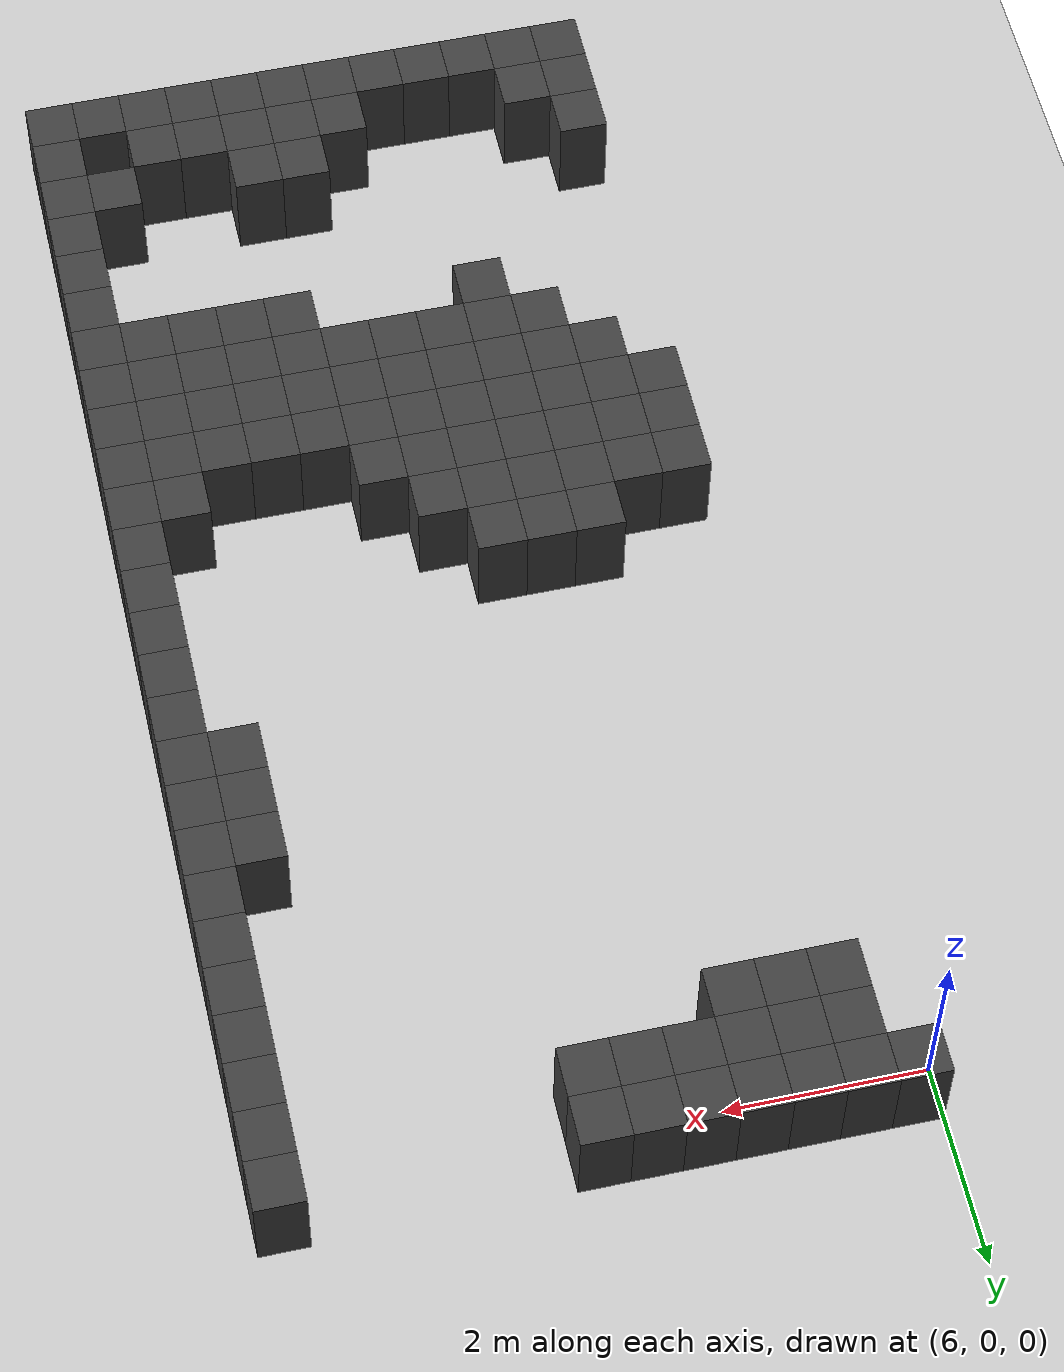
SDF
<sdf version="1.7">
 <world name="map_7372">
  <model name="ground_plane">
   <static>true</static>
   <link name="link">
    <collision name="collision">
     <geometry><plane><normal>0 0 1</normal><size>200 200</size></plane></geometry>
    </collision>
    <visual name="visual">
     <geometry><plane><normal>0 0 1</normal><size>200 200</size></plane></geometry>
     <material><ambient>0.8 0.8 0.8 1</ambient><diffuse>0.8 0.8 0.8 1</diffuse></material>
    </visual>
   </link>
  </model>
  <model name="maze_environment">
   <static>true</static>
   <link name="wall_411">
    <pose>6.250 0.250 0.500 0 0 0</pose>
    <collision name="col"><geometry><box><size>0.5 0.5 1.0</size></box></geometry></collision>
    <visual name="vis">
     <geometry><box><size>0.5 0.5 1.0</size></box></geometry>
     <material><ambient>0.15 0.15 0.15 1</ambient><diffuse>0.25 0.25 0.25 1</diffuse></material>
    </visual>
   </link>
   <link name="wall_412">
    <pose>6.750 0.250 0.500 0 0 0</pose>
    <collision name="col"><geometry><box><size>0.5 0.5 1.0</size></box></geometry></collision>
    <visual name="vis">
     <geometry><box><size>0.5 0.5 1.0</size></box></geometry>
     <material><ambient>0.15 0.15 0.15 1</ambient><diffuse>0.25 0.25 0.25 1</diffuse></material>
    </visual>
   </link>
   <link name="wall_413">
    <pose>7.250 0.250 0.500 0 0 0</pose>
    <collision name="col"><geometry><box><size>0.5 0.5 1.0</size></box></geometry></collision>
    <visual name="vis">
     <geometry><box><size>0.5 0.5 1.0</size></box></geometry>
     <material><ambient>0.15 0.15 0.15 1</ambient><diffuse>0.25 0.25 0.25 1</diffuse></material>
    </visual>
   </link>
   <link name="wall_414">
    <pose>7.750 0.250 0.500 0 0 0</pose>
    <collision name="col"><geometry><box><size>0.5 0.5 1.0</size></box></geometry></collision>
    <visual name="vis">
     <geometry><box><size>0.5 0.5 1.0</size></box></geometry>
     <material><ambient>0.15 0.15 0.15 1</ambient><diffuse>0.25 0.25 0.25 1</diffuse></material>
    </visual>
   </link>
   <link name="wall_415">
    <pose>8.250 0.250 0.500 0 0 0</pose>
    <collision name="col"><geometry><box><size>0.5 0.5 1.0</size></box></geometry></collision>
    <visual name="vis">
     <geometry><box><size>0.5 0.5 1.0</size></box></geometry>
     <material><ambient>0.15 0.15 0.15 1</ambient><diffuse>0.25 0.25 0.25 1</diffuse></material>
    </visual>
   </link>
   <link name="wall_416">
    <pose>8.750 0.250 0.500 0 0 0</pose>
    <collision name="col"><geometry><box><size>0.5 0.5 1.0</size></box></geometry></collision>
    <visual name="vis">
     <geometry><box><size>0.5 0.5 1.0</size></box></geometry>
     <material><ambient>0.15 0.15 0.15 1</ambient><diffuse>0.25 0.25 0.25 1</diffuse></material>
    </visual>
   </link>
   <link name="wall_417">
    <pose>9.250 0.250 0.500 0 0 0</pose>
    <collision name="col"><geometry><box><size>0.5 0.5 1.0</size></box></geometry></collision>
    <visual name="vis">
     <geometry><box><size>0.5 0.5 1.0</size></box></geometry>
     <material><ambient>0.15 0.15 0.15 1</ambient><diffuse>0.25 0.25 0.25 1</diffuse></material>
    </visual>
   </link>
   <link name="wall_418">
    <pose>12.250 0.250 0.500 0 0 0</pose>
    <collision name="col"><geometry><box><size>0.5 0.5 1.0</size></box></geometry></collision>
    <visual name="vis">
     <geometry><box><size>0.5 0.5 1.0</size></box></geometry>
     <material><ambient>0.15 0.15 0.15 1</ambient><diffuse>0.25 0.25 0.25 1</diffuse></material>
    </visual>
   </link>
   <link name="wall_424">
    <pose>6.750 -0.250 0.500 0 0 0</pose>
    <collision name="col"><geometry><box><size>0.5 0.5 1.0</size></box></geometry></collision>
    <visual name="vis">
     <geometry><box><size>0.5 0.5 1.0</size></box></geometry>
     <material><ambient>0.15 0.15 0.15 1</ambient><diffuse>0.25 0.25 0.25 1</diffuse></material>
    </visual>
   </link>
   <link name="wall_425">
    <pose>7.250 -0.250 0.500 0 0 0</pose>
    <collision name="col"><geometry><box><size>0.5 0.5 1.0</size></box></geometry></collision>
    <visual name="vis">
     <geometry><box><size>0.5 0.5 1.0</size></box></geometry>
     <material><ambient>0.15 0.15 0.15 1</ambient><diffuse>0.25 0.25 0.25 1</diffuse></material>
    </visual>
   </link>
   <link name="wall_426">
    <pose>7.750 -0.250 0.500 0 0 0</pose>
    <collision name="col"><geometry><box><size>0.5 0.5 1.0</size></box></geometry></collision>
    <visual name="vis">
     <geometry><box><size>0.5 0.5 1.0</size></box></geometry>
     <material><ambient>0.15 0.15 0.15 1</ambient><diffuse>0.25 0.25 0.25 1</diffuse></material>
    </visual>
   </link>
   <link name="wall_427">
    <pose>8.250 -0.250 0.500 0 0 0</pose>
    <collision name="col"><geometry><box><size>0.5 0.5 1.0</size></box></geometry></collision>
    <visual name="vis">
     <geometry><box><size>0.5 0.5 1.0</size></box></geometry>
     <material><ambient>0.15 0.15 0.15 1</ambient><diffuse>0.25 0.25 0.25 1</diffuse></material>
    </visual>
   </link>
   <link name="wall_428">
    <pose>8.750 -0.250 0.500 0 0 0</pose>
    <collision name="col"><geometry><box><size>0.5 0.5 1.0</size></box></geometry></collision>
    <visual name="vis">
     <geometry><box><size>0.5 0.5 1.0</size></box></geometry>
     <material><ambient>0.15 0.15 0.15 1</ambient><diffuse>0.25 0.25 0.25 1</diffuse></material>
    </visual>
   </link>
   <link name="wall_429">
    <pose>9.250 -0.250 0.500 0 0 0</pose>
    <collision name="col"><geometry><box><size>0.5 0.5 1.0</size></box></geometry></collision>
    <visual name="vis">
     <geometry><box><size>0.5 0.5 1.0</size></box></geometry>
     <material><ambient>0.15 0.15 0.15 1</ambient><diffuse>0.25 0.25 0.25 1</diffuse></material>
    </visual>
   </link>
   <link name="wall_430">
    <pose>12.250 -0.250 0.500 0 0 0</pose>
    <collision name="col"><geometry><box><size>0.5 0.5 1.0</size></box></geometry></collision>
    <visual name="vis">
     <geometry><box><size>0.5 0.5 1.0</size></box></geometry>
     <material><ambient>0.15 0.15 0.15 1</ambient><diffuse>0.25 0.25 0.25 1</diffuse></material>
    </visual>
   </link>
   <link name="wall_433">
    <pose>6.750 -0.750 0.500 0 0 0</pose>
    <collision name="col"><geometry><box><size>0.5 0.5 1.0</size></box></geometry></collision>
    <visual name="vis">
     <geometry><box><size>0.5 0.5 1.0</size></box></geometry>
     <material><ambient>0.15 0.15 0.15 1</ambient><diffuse>0.25 0.25 0.25 1</diffuse></material>
    </visual>
   </link>
   <link name="wall_434">
    <pose>7.250 -0.750 0.500 0 0 0</pose>
    <collision name="col"><geometry><box><size>0.5 0.5 1.0</size></box></geometry></collision>
    <visual name="vis">
     <geometry><box><size>0.5 0.5 1.0</size></box></geometry>
     <material><ambient>0.15 0.15 0.15 1</ambient><diffuse>0.25 0.25 0.25 1</diffuse></material>
    </visual>
   </link>
   <link name="wall_435">
    <pose>7.750 -0.750 0.500 0 0 0</pose>
    <collision name="col"><geometry><box><size>0.5 0.5 1.0</size></box></geometry></collision>
    <visual name="vis">
     <geometry><box><size>0.5 0.5 1.0</size></box></geometry>
     <material><ambient>0.15 0.15 0.15 1</ambient><diffuse>0.25 0.25 0.25 1</diffuse></material>
    </visual>
   </link>
   <link name="wall_436">
    <pose>12.250 -0.750 0.500 0 0 0</pose>
    <collision name="col"><geometry><box><size>0.5 0.5 1.0</size></box></geometry></collision>
    <visual name="vis">
     <geometry><box><size>0.5 0.5 1.0</size></box></geometry>
     <material><ambient>0.15 0.15 0.15 1</ambient><diffuse>0.25 0.25 0.25 1</diffuse></material>
    </visual>
   </link>
   <link name="wall_438">
    <pose>12.250 -1.250 0.500 0 0 0</pose>
    <collision name="col"><geometry><box><size>0.5 0.5 1.0</size></box></geometry></collision>
    <visual name="vis">
     <geometry><box><size>0.5 0.5 1.0</size></box></geometry>
     <material><ambient>0.15 0.15 0.15 1</ambient><diffuse>0.25 0.25 0.25 1</diffuse></material>
    </visual>
   </link>
   <link name="wall_440">
    <pose>12.250 -1.750 0.500 0 0 0</pose>
    <collision name="col"><geometry><box><size>0.5 0.5 1.0</size></box></geometry></collision>
    <visual name="vis">
     <geometry><box><size>0.5 0.5 1.0</size></box></geometry>
     <material><ambient>0.15 0.15 0.15 1</ambient><diffuse>0.25 0.25 0.25 1</diffuse></material>
    </visual>
   </link>
   <link name="wall_449">
    <pose>12.250 -2.250 0.500 0 0 0</pose>
    <collision name="col"><geometry><box><size>0.5 0.5 1.0</size></box></geometry></collision>
    <visual name="vis">
     <geometry><box><size>0.5 0.5 1.0</size></box></geometry>
     <material><ambient>0.15 0.15 0.15 1</ambient><diffuse>0.25 0.25 0.25 1</diffuse></material>
    </visual>
   </link>
   <link name="wall_465">
    <pose>12.250 -2.750 0.500 0 0 0</pose>
    <collision name="col"><geometry><box><size>0.5 0.5 1.0</size></box></geometry></collision>
    <visual name="vis">
     <geometry><box><size>0.5 0.5 1.0</size></box></geometry>
     <material><ambient>0.15 0.15 0.15 1</ambient><diffuse>0.25 0.25 0.25 1</diffuse></material>
    </visual>
   </link>
   <link name="wall_489">
    <pose>11.750 -3.250 0.500 0 0 0</pose>
    <collision name="col"><geometry><box><size>0.5 0.5 1.0</size></box></geometry></collision>
    <visual name="vis">
     <geometry><box><size>0.5 0.5 1.0</size></box></geometry>
     <material><ambient>0.15 0.15 0.15 1</ambient><diffuse>0.25 0.25 0.25 1</diffuse></material>
    </visual>
   </link>
   <link name="wall_490">
    <pose>12.250 -3.250 0.500 0 0 0</pose>
    <collision name="col"><geometry><box><size>0.5 0.5 1.0</size></box></geometry></collision>
    <visual name="vis">
     <geometry><box><size>0.5 0.5 1.0</size></box></geometry>
     <material><ambient>0.15 0.15 0.15 1</ambient><diffuse>0.25 0.25 0.25 1</diffuse></material>
    </visual>
   </link>
   <link name="wall_515">
    <pose>11.750 -3.750 0.500 0 0 0</pose>
    <collision name="col"><geometry><box><size>0.5 0.5 1.0</size></box></geometry></collision>
    <visual name="vis">
     <geometry><box><size>0.5 0.5 1.0</size></box></geometry>
     <material><ambient>0.15 0.15 0.15 1</ambient><diffuse>0.25 0.25 0.25 1</diffuse></material>
    </visual>
   </link>
   <link name="wall_516">
    <pose>12.250 -3.750 0.500 0 0 0</pose>
    <collision name="col"><geometry><box><size>0.5 0.5 1.0</size></box></geometry></collision>
    <visual name="vis">
     <geometry><box><size>0.5 0.5 1.0</size></box></geometry>
     <material><ambient>0.15 0.15 0.15 1</ambient><diffuse>0.25 0.25 0.25 1</diffuse></material>
    </visual>
   </link>
   <link name="wall_539">
    <pose>11.750 -4.250 0.500 0 0 0</pose>
    <collision name="col"><geometry><box><size>0.5 0.5 1.0</size></box></geometry></collision>
    <visual name="vis">
     <geometry><box><size>0.5 0.5 1.0</size></box></geometry>
     <material><ambient>0.15 0.15 0.15 1</ambient><diffuse>0.25 0.25 0.25 1</diffuse></material>
    </visual>
   </link>
   <link name="wall_540">
    <pose>12.250 -4.250 0.500 0 0 0</pose>
    <collision name="col"><geometry><box><size>0.5 0.5 1.0</size></box></geometry></collision>
    <visual name="vis">
     <geometry><box><size>0.5 0.5 1.0</size></box></geometry>
     <material><ambient>0.15 0.15 0.15 1</ambient><diffuse>0.25 0.25 0.25 1</diffuse></material>
    </visual>
   </link>
   <link name="wall_557">
    <pose>12.250 -4.750 0.500 0 0 0</pose>
    <collision name="col"><geometry><box><size>0.5 0.5 1.0</size></box></geometry></collision>
    <visual name="vis">
     <geometry><box><size>0.5 0.5 1.0</size></box></geometry>
     <material><ambient>0.15 0.15 0.15 1</ambient><diffuse>0.25 0.25 0.25 1</diffuse></material>
    </visual>
   </link>
   <link name="wall_569">
    <pose>12.250 -5.250 0.500 0 0 0</pose>
    <collision name="col"><geometry><box><size>0.5 0.5 1.0</size></box></geometry></collision>
    <visual name="vis">
     <geometry><box><size>0.5 0.5 1.0</size></box></geometry>
     <material><ambient>0.15 0.15 0.15 1</ambient><diffuse>0.25 0.25 0.25 1</diffuse></material>
    </visual>
   </link>
   <link name="wall_578">
    <pose>12.250 -5.750 0.500 0 0 0</pose>
    <collision name="col"><geometry><box><size>0.5 0.5 1.0</size></box></geometry></collision>
    <visual name="vis">
     <geometry><box><size>0.5 0.5 1.0</size></box></geometry>
     <material><ambient>0.15 0.15 0.15 1</ambient><diffuse>0.25 0.25 0.25 1</diffuse></material>
    </visual>
   </link>
   <link name="wall_583">
    <pose>7.750 -6.250 0.500 0 0 0</pose>
    <collision name="col"><geometry><box><size>0.5 0.5 1.0</size></box></geometry></collision>
    <visual name="vis">
     <geometry><box><size>0.5 0.5 1.0</size></box></geometry>
     <material><ambient>0.15 0.15 0.15 1</ambient><diffuse>0.25 0.25 0.25 1</diffuse></material>
    </visual>
   </link>
   <link name="wall_584">
    <pose>8.250 -6.250 0.500 0 0 0</pose>
    <collision name="col"><geometry><box><size>0.5 0.5 1.0</size></box></geometry></collision>
    <visual name="vis">
     <geometry><box><size>0.5 0.5 1.0</size></box></geometry>
     <material><ambient>0.15 0.15 0.15 1</ambient><diffuse>0.25 0.25 0.25 1</diffuse></material>
    </visual>
   </link>
   <link name="wall_585">
    <pose>8.750 -6.250 0.500 0 0 0</pose>
    <collision name="col"><geometry><box><size>0.5 0.5 1.0</size></box></geometry></collision>
    <visual name="vis">
     <geometry><box><size>0.5 0.5 1.0</size></box></geometry>
     <material><ambient>0.15 0.15 0.15 1</ambient><diffuse>0.25 0.25 0.25 1</diffuse></material>
    </visual>
   </link>
   <link name="wall_586">
    <pose>12.250 -6.250 0.500 0 0 0</pose>
    <collision name="col"><geometry><box><size>0.5 0.5 1.0</size></box></geometry></collision>
    <visual name="vis">
     <geometry><box><size>0.5 0.5 1.0</size></box></geometry>
     <material><ambient>0.15 0.15 0.15 1</ambient><diffuse>0.25 0.25 0.25 1</diffuse></material>
    </visual>
   </link>
   <link name="wall_596">
    <pose>6.750 -6.750 0.500 0 0 0</pose>
    <collision name="col"><geometry><box><size>0.5 0.5 1.0</size></box></geometry></collision>
    <visual name="vis">
     <geometry><box><size>0.5 0.5 1.0</size></box></geometry>
     <material><ambient>0.15 0.15 0.15 1</ambient><diffuse>0.25 0.25 0.25 1</diffuse></material>
    </visual>
   </link>
   <link name="wall_597">
    <pose>7.250 -6.750 0.500 0 0 0</pose>
    <collision name="col"><geometry><box><size>0.5 0.5 1.0</size></box></geometry></collision>
    <visual name="vis">
     <geometry><box><size>0.5 0.5 1.0</size></box></geometry>
     <material><ambient>0.15 0.15 0.15 1</ambient><diffuse>0.25 0.25 0.25 1</diffuse></material>
    </visual>
   </link>
   <link name="wall_598">
    <pose>7.750 -6.750 0.500 0 0 0</pose>
    <collision name="col"><geometry><box><size>0.5 0.5 1.0</size></box></geometry></collision>
    <visual name="vis">
     <geometry><box><size>0.5 0.5 1.0</size></box></geometry>
     <material><ambient>0.15 0.15 0.15 1</ambient><diffuse>0.25 0.25 0.25 1</diffuse></material>
    </visual>
   </link>
   <link name="wall_599">
    <pose>8.250 -6.750 0.500 0 0 0</pose>
    <collision name="col"><geometry><box><size>0.5 0.5 1.0</size></box></geometry></collision>
    <visual name="vis">
     <geometry><box><size>0.5 0.5 1.0</size></box></geometry>
     <material><ambient>0.15 0.15 0.15 1</ambient><diffuse>0.25 0.25 0.25 1</diffuse></material>
    </visual>
   </link>
   <link name="wall_600">
    <pose>8.750 -6.750 0.500 0 0 0</pose>
    <collision name="col"><geometry><box><size>0.5 0.5 1.0</size></box></geometry></collision>
    <visual name="vis">
     <geometry><box><size>0.5 0.5 1.0</size></box></geometry>
     <material><ambient>0.15 0.15 0.15 1</ambient><diffuse>0.25 0.25 0.25 1</diffuse></material>
    </visual>
   </link>
   <link name="wall_601">
    <pose>9.250 -6.750 0.500 0 0 0</pose>
    <collision name="col"><geometry><box><size>0.5 0.5 1.0</size></box></geometry></collision>
    <visual name="vis">
     <geometry><box><size>0.5 0.5 1.0</size></box></geometry>
     <material><ambient>0.15 0.15 0.15 1</ambient><diffuse>0.25 0.25 0.25 1</diffuse></material>
    </visual>
   </link>
   <link name="wall_602">
    <pose>12.250 -6.750 0.500 0 0 0</pose>
    <collision name="col"><geometry><box><size>0.5 0.5 1.0</size></box></geometry></collision>
    <visual name="vis">
     <geometry><box><size>0.5 0.5 1.0</size></box></geometry>
     <material><ambient>0.15 0.15 0.15 1</ambient><diffuse>0.25 0.25 0.25 1</diffuse></material>
    </visual>
   </link>
   <link name="wall_612">
    <pose>6.750 -7.250 0.500 0 0 0</pose>
    <collision name="col"><geometry><box><size>0.5 0.5 1.0</size></box></geometry></collision>
    <visual name="vis">
     <geometry><box><size>0.5 0.5 1.0</size></box></geometry>
     <material><ambient>0.15 0.15 0.15 1</ambient><diffuse>0.25 0.25 0.25 1</diffuse></material>
    </visual>
   </link>
   <link name="wall_613">
    <pose>7.250 -7.250 0.500 0 0 0</pose>
    <collision name="col"><geometry><box><size>0.5 0.5 1.0</size></box></geometry></collision>
    <visual name="vis">
     <geometry><box><size>0.5 0.5 1.0</size></box></geometry>
     <material><ambient>0.15 0.15 0.15 1</ambient><diffuse>0.25 0.25 0.25 1</diffuse></material>
    </visual>
   </link>
   <link name="wall_614">
    <pose>7.750 -7.250 0.500 0 0 0</pose>
    <collision name="col"><geometry><box><size>0.5 0.5 1.0</size></box></geometry></collision>
    <visual name="vis">
     <geometry><box><size>0.5 0.5 1.0</size></box></geometry>
     <material><ambient>0.15 0.15 0.15 1</ambient><diffuse>0.25 0.25 0.25 1</diffuse></material>
    </visual>
   </link>
   <link name="wall_615">
    <pose>8.250 -7.250 0.500 0 0 0</pose>
    <collision name="col"><geometry><box><size>0.5 0.5 1.0</size></box></geometry></collision>
    <visual name="vis">
     <geometry><box><size>0.5 0.5 1.0</size></box></geometry>
     <material><ambient>0.15 0.15 0.15 1</ambient><diffuse>0.25 0.25 0.25 1</diffuse></material>
    </visual>
   </link>
   <link name="wall_616">
    <pose>8.750 -7.250 0.500 0 0 0</pose>
    <collision name="col"><geometry><box><size>0.5 0.5 1.0</size></box></geometry></collision>
    <visual name="vis">
     <geometry><box><size>0.5 0.5 1.0</size></box></geometry>
     <material><ambient>0.15 0.15 0.15 1</ambient><diffuse>0.25 0.25 0.25 1</diffuse></material>
    </visual>
   </link>
   <link name="wall_617">
    <pose>9.250 -7.250 0.500 0 0 0</pose>
    <collision name="col"><geometry><box><size>0.5 0.5 1.0</size></box></geometry></collision>
    <visual name="vis">
     <geometry><box><size>0.5 0.5 1.0</size></box></geometry>
     <material><ambient>0.15 0.15 0.15 1</ambient><diffuse>0.25 0.25 0.25 1</diffuse></material>
    </visual>
   </link>
   <link name="wall_618">
    <pose>9.750 -7.250 0.500 0 0 0</pose>
    <collision name="col"><geometry><box><size>0.5 0.5 1.0</size></box></geometry></collision>
    <visual name="vis">
     <geometry><box><size>0.5 0.5 1.0</size></box></geometry>
     <material><ambient>0.15 0.15 0.15 1</ambient><diffuse>0.25 0.25 0.25 1</diffuse></material>
    </visual>
   </link>
   <link name="wall_619">
    <pose>11.750 -7.250 0.500 0 0 0</pose>
    <collision name="col"><geometry><box><size>0.5 0.5 1.0</size></box></geometry></collision>
    <visual name="vis">
     <geometry><box><size>0.5 0.5 1.0</size></box></geometry>
     <material><ambient>0.15 0.15 0.15 1</ambient><diffuse>0.25 0.25 0.25 1</diffuse></material>
    </visual>
   </link>
   <link name="wall_620">
    <pose>12.250 -7.250 0.500 0 0 0</pose>
    <collision name="col"><geometry><box><size>0.5 0.5 1.0</size></box></geometry></collision>
    <visual name="vis">
     <geometry><box><size>0.5 0.5 1.0</size></box></geometry>
     <material><ambient>0.15 0.15 0.15 1</ambient><diffuse>0.25 0.25 0.25 1</diffuse></material>
    </visual>
   </link>
   <link name="wall_629">
    <pose>6.750 -7.750 0.500 0 0 0</pose>
    <collision name="col"><geometry><box><size>0.5 0.5 1.0</size></box></geometry></collision>
    <visual name="vis">
     <geometry><box><size>0.5 0.5 1.0</size></box></geometry>
     <material><ambient>0.15 0.15 0.15 1</ambient><diffuse>0.25 0.25 0.25 1</diffuse></material>
    </visual>
   </link>
   <link name="wall_630">
    <pose>7.250 -7.750 0.500 0 0 0</pose>
    <collision name="col"><geometry><box><size>0.5 0.5 1.0</size></box></geometry></collision>
    <visual name="vis">
     <geometry><box><size>0.5 0.5 1.0</size></box></geometry>
     <material><ambient>0.15 0.15 0.15 1</ambient><diffuse>0.25 0.25 0.25 1</diffuse></material>
    </visual>
   </link>
   <link name="wall_631">
    <pose>7.750 -7.750 0.500 0 0 0</pose>
    <collision name="col"><geometry><box><size>0.5 0.5 1.0</size></box></geometry></collision>
    <visual name="vis">
     <geometry><box><size>0.5 0.5 1.0</size></box></geometry>
     <material><ambient>0.15 0.15 0.15 1</ambient><diffuse>0.25 0.25 0.25 1</diffuse></material>
    </visual>
   </link>
   <link name="wall_632">
    <pose>8.250 -7.750 0.500 0 0 0</pose>
    <collision name="col"><geometry><box><size>0.5 0.5 1.0</size></box></geometry></collision>
    <visual name="vis">
     <geometry><box><size>0.5 0.5 1.0</size></box></geometry>
     <material><ambient>0.15 0.15 0.15 1</ambient><diffuse>0.25 0.25 0.25 1</diffuse></material>
    </visual>
   </link>
   <link name="wall_633">
    <pose>8.750 -7.750 0.500 0 0 0</pose>
    <collision name="col"><geometry><box><size>0.5 0.5 1.0</size></box></geometry></collision>
    <visual name="vis">
     <geometry><box><size>0.5 0.5 1.0</size></box></geometry>
     <material><ambient>0.15 0.15 0.15 1</ambient><diffuse>0.25 0.25 0.25 1</diffuse></material>
    </visual>
   </link>
   <link name="wall_634">
    <pose>9.250 -7.750 0.500 0 0 0</pose>
    <collision name="col"><geometry><box><size>0.5 0.5 1.0</size></box></geometry></collision>
    <visual name="vis">
     <geometry><box><size>0.5 0.5 1.0</size></box></geometry>
     <material><ambient>0.15 0.15 0.15 1</ambient><diffuse>0.25 0.25 0.25 1</diffuse></material>
    </visual>
   </link>
   <link name="wall_635">
    <pose>9.750 -7.750 0.500 0 0 0</pose>
    <collision name="col"><geometry><box><size>0.5 0.5 1.0</size></box></geometry></collision>
    <visual name="vis">
     <geometry><box><size>0.5 0.5 1.0</size></box></geometry>
     <material><ambient>0.15 0.15 0.15 1</ambient><diffuse>0.25 0.25 0.25 1</diffuse></material>
    </visual>
   </link>
   <link name="wall_636">
    <pose>10.250 -7.750 0.500 0 0 0</pose>
    <collision name="col"><geometry><box><size>0.5 0.5 1.0</size></box></geometry></collision>
    <visual name="vis">
     <geometry><box><size>0.5 0.5 1.0</size></box></geometry>
     <material><ambient>0.15 0.15 0.15 1</ambient><diffuse>0.25 0.25 0.25 1</diffuse></material>
    </visual>
   </link>
   <link name="wall_637">
    <pose>10.750 -7.750 0.500 0 0 0</pose>
    <collision name="col"><geometry><box><size>0.5 0.5 1.0</size></box></geometry></collision>
    <visual name="vis">
     <geometry><box><size>0.5 0.5 1.0</size></box></geometry>
     <material><ambient>0.15 0.15 0.15 1</ambient><diffuse>0.25 0.25 0.25 1</diffuse></material>
    </visual>
   </link>
   <link name="wall_638">
    <pose>11.250 -7.750 0.500 0 0 0</pose>
    <collision name="col"><geometry><box><size>0.5 0.5 1.0</size></box></geometry></collision>
    <visual name="vis">
     <geometry><box><size>0.5 0.5 1.0</size></box></geometry>
     <material><ambient>0.15 0.15 0.15 1</ambient><diffuse>0.25 0.25 0.25 1</diffuse></material>
    </visual>
   </link>
   <link name="wall_639">
    <pose>11.750 -7.750 0.500 0 0 0</pose>
    <collision name="col"><geometry><box><size>0.5 0.5 1.0</size></box></geometry></collision>
    <visual name="vis">
     <geometry><box><size>0.5 0.5 1.0</size></box></geometry>
     <material><ambient>0.15 0.15 0.15 1</ambient><diffuse>0.25 0.25 0.25 1</diffuse></material>
    </visual>
   </link>
   <link name="wall_640">
    <pose>12.250 -7.750 0.500 0 0 0</pose>
    <collision name="col"><geometry><box><size>0.5 0.5 1.0</size></box></geometry></collision>
    <visual name="vis">
     <geometry><box><size>0.5 0.5 1.0</size></box></geometry>
     <material><ambient>0.15 0.15 0.15 1</ambient><diffuse>0.25 0.25 0.25 1</diffuse></material>
    </visual>
   </link>
   <link name="wall_646">
    <pose>7.250 -8.250 0.500 0 0 0</pose>
    <collision name="col"><geometry><box><size>0.5 0.5 1.0</size></box></geometry></collision>
    <visual name="vis">
     <geometry><box><size>0.5 0.5 1.0</size></box></geometry>
     <material><ambient>0.15 0.15 0.15 1</ambient><diffuse>0.25 0.25 0.25 1</diffuse></material>
    </visual>
   </link>
   <link name="wall_647">
    <pose>7.750 -8.250 0.500 0 0 0</pose>
    <collision name="col"><geometry><box><size>0.5 0.5 1.0</size></box></geometry></collision>
    <visual name="vis">
     <geometry><box><size>0.5 0.5 1.0</size></box></geometry>
     <material><ambient>0.15 0.15 0.15 1</ambient><diffuse>0.25 0.25 0.25 1</diffuse></material>
    </visual>
   </link>
   <link name="wall_648">
    <pose>8.250 -8.250 0.500 0 0 0</pose>
    <collision name="col"><geometry><box><size>0.5 0.5 1.0</size></box></geometry></collision>
    <visual name="vis">
     <geometry><box><size>0.5 0.5 1.0</size></box></geometry>
     <material><ambient>0.15 0.15 0.15 1</ambient><diffuse>0.25 0.25 0.25 1</diffuse></material>
    </visual>
   </link>
   <link name="wall_649">
    <pose>8.750 -8.250 0.500 0 0 0</pose>
    <collision name="col"><geometry><box><size>0.5 0.5 1.0</size></box></geometry></collision>
    <visual name="vis">
     <geometry><box><size>0.5 0.5 1.0</size></box></geometry>
     <material><ambient>0.15 0.15 0.15 1</ambient><diffuse>0.25 0.25 0.25 1</diffuse></material>
    </visual>
   </link>
   <link name="wall_650">
    <pose>9.250 -8.250 0.500 0 0 0</pose>
    <collision name="col"><geometry><box><size>0.5 0.5 1.0</size></box></geometry></collision>
    <visual name="vis">
     <geometry><box><size>0.5 0.5 1.0</size></box></geometry>
     <material><ambient>0.15 0.15 0.15 1</ambient><diffuse>0.25 0.25 0.25 1</diffuse></material>
    </visual>
   </link>
   <link name="wall_651">
    <pose>9.750 -8.250 0.500 0 0 0</pose>
    <collision name="col"><geometry><box><size>0.5 0.5 1.0</size></box></geometry></collision>
    <visual name="vis">
     <geometry><box><size>0.5 0.5 1.0</size></box></geometry>
     <material><ambient>0.15 0.15 0.15 1</ambient><diffuse>0.25 0.25 0.25 1</diffuse></material>
    </visual>
   </link>
   <link name="wall_652">
    <pose>10.250 -8.250 0.500 0 0 0</pose>
    <collision name="col"><geometry><box><size>0.5 0.5 1.0</size></box></geometry></collision>
    <visual name="vis">
     <geometry><box><size>0.5 0.5 1.0</size></box></geometry>
     <material><ambient>0.15 0.15 0.15 1</ambient><diffuse>0.25 0.25 0.25 1</diffuse></material>
    </visual>
   </link>
   <link name="wall_653">
    <pose>10.750 -8.250 0.500 0 0 0</pose>
    <collision name="col"><geometry><box><size>0.5 0.5 1.0</size></box></geometry></collision>
    <visual name="vis">
     <geometry><box><size>0.5 0.5 1.0</size></box></geometry>
     <material><ambient>0.15 0.15 0.15 1</ambient><diffuse>0.25 0.25 0.25 1</diffuse></material>
    </visual>
   </link>
   <link name="wall_654">
    <pose>11.250 -8.250 0.500 0 0 0</pose>
    <collision name="col"><geometry><box><size>0.5 0.5 1.0</size></box></geometry></collision>
    <visual name="vis">
     <geometry><box><size>0.5 0.5 1.0</size></box></geometry>
     <material><ambient>0.15 0.15 0.15 1</ambient><diffuse>0.25 0.25 0.25 1</diffuse></material>
    </visual>
   </link>
   <link name="wall_655">
    <pose>11.750 -8.250 0.500 0 0 0</pose>
    <collision name="col"><geometry><box><size>0.5 0.5 1.0</size></box></geometry></collision>
    <visual name="vis">
     <geometry><box><size>0.5 0.5 1.0</size></box></geometry>
     <material><ambient>0.15 0.15 0.15 1</ambient><diffuse>0.25 0.25 0.25 1</diffuse></material>
    </visual>
   </link>
   <link name="wall_656">
    <pose>12.250 -8.250 0.500 0 0 0</pose>
    <collision name="col"><geometry><box><size>0.5 0.5 1.0</size></box></geometry></collision>
    <visual name="vis">
     <geometry><box><size>0.5 0.5 1.0</size></box></geometry>
     <material><ambient>0.15 0.15 0.15 1</ambient><diffuse>0.25 0.25 0.25 1</diffuse></material>
    </visual>
   </link>
   <link name="wall_663">
    <pose>7.750 -8.750 0.500 0 0 0</pose>
    <collision name="col"><geometry><box><size>0.5 0.5 1.0</size></box></geometry></collision>
    <visual name="vis">
     <geometry><box><size>0.5 0.5 1.0</size></box></geometry>
     <material><ambient>0.15 0.15 0.15 1</ambient><diffuse>0.25 0.25 0.25 1</diffuse></material>
    </visual>
   </link>
   <link name="wall_664">
    <pose>8.250 -8.750 0.500 0 0 0</pose>
    <collision name="col"><geometry><box><size>0.5 0.5 1.0</size></box></geometry></collision>
    <visual name="vis">
     <geometry><box><size>0.5 0.5 1.0</size></box></geometry>
     <material><ambient>0.15 0.15 0.15 1</ambient><diffuse>0.25 0.25 0.25 1</diffuse></material>
    </visual>
   </link>
   <link name="wall_665">
    <pose>8.750 -8.750 0.500 0 0 0</pose>
    <collision name="col"><geometry><box><size>0.5 0.5 1.0</size></box></geometry></collision>
    <visual name="vis">
     <geometry><box><size>0.5 0.5 1.0</size></box></geometry>
     <material><ambient>0.15 0.15 0.15 1</ambient><diffuse>0.25 0.25 0.25 1</diffuse></material>
    </visual>
   </link>
   <link name="wall_666">
    <pose>9.250 -8.750 0.500 0 0 0</pose>
    <collision name="col"><geometry><box><size>0.5 0.5 1.0</size></box></geometry></collision>
    <visual name="vis">
     <geometry><box><size>0.5 0.5 1.0</size></box></geometry>
     <material><ambient>0.15 0.15 0.15 1</ambient><diffuse>0.25 0.25 0.25 1</diffuse></material>
    </visual>
   </link>
   <link name="wall_667">
    <pose>9.750 -8.750 0.500 0 0 0</pose>
    <collision name="col"><geometry><box><size>0.5 0.5 1.0</size></box></geometry></collision>
    <visual name="vis">
     <geometry><box><size>0.5 0.5 1.0</size></box></geometry>
     <material><ambient>0.15 0.15 0.15 1</ambient><diffuse>0.25 0.25 0.25 1</diffuse></material>
    </visual>
   </link>
   <link name="wall_668">
    <pose>10.250 -8.750 0.500 0 0 0</pose>
    <collision name="col"><geometry><box><size>0.5 0.5 1.0</size></box></geometry></collision>
    <visual name="vis">
     <geometry><box><size>0.5 0.5 1.0</size></box></geometry>
     <material><ambient>0.15 0.15 0.15 1</ambient><diffuse>0.25 0.25 0.25 1</diffuse></material>
    </visual>
   </link>
   <link name="wall_669">
    <pose>10.750 -8.750 0.500 0 0 0</pose>
    <collision name="col"><geometry><box><size>0.5 0.5 1.0</size></box></geometry></collision>
    <visual name="vis">
     <geometry><box><size>0.5 0.5 1.0</size></box></geometry>
     <material><ambient>0.15 0.15 0.15 1</ambient><diffuse>0.25 0.25 0.25 1</diffuse></material>
    </visual>
   </link>
   <link name="wall_670">
    <pose>11.250 -8.750 0.500 0 0 0</pose>
    <collision name="col"><geometry><box><size>0.5 0.5 1.0</size></box></geometry></collision>
    <visual name="vis">
     <geometry><box><size>0.5 0.5 1.0</size></box></geometry>
     <material><ambient>0.15 0.15 0.15 1</ambient><diffuse>0.25 0.25 0.25 1</diffuse></material>
    </visual>
   </link>
   <link name="wall_671">
    <pose>11.750 -8.750 0.500 0 0 0</pose>
    <collision name="col"><geometry><box><size>0.5 0.5 1.0</size></box></geometry></collision>
    <visual name="vis">
     <geometry><box><size>0.5 0.5 1.0</size></box></geometry>
     <material><ambient>0.15 0.15 0.15 1</ambient><diffuse>0.25 0.25 0.25 1</diffuse></material>
    </visual>
   </link>
   <link name="wall_672">
    <pose>12.250 -8.750 0.500 0 0 0</pose>
    <collision name="col"><geometry><box><size>0.5 0.5 1.0</size></box></geometry></collision>
    <visual name="vis">
     <geometry><box><size>0.5 0.5 1.0</size></box></geometry>
     <material><ambient>0.15 0.15 0.15 1</ambient><diffuse>0.25 0.25 0.25 1</diffuse></material>
    </visual>
   </link>
   <link name="wall_686">
    <pose>8.250 -9.250 0.500 0 0 0</pose>
    <collision name="col"><geometry><box><size>0.5 0.5 1.0</size></box></geometry></collision>
    <visual name="vis">
     <geometry><box><size>0.5 0.5 1.0</size></box></geometry>
     <material><ambient>0.15 0.15 0.15 1</ambient><diffuse>0.25 0.25 0.25 1</diffuse></material>
    </visual>
   </link>
   <link name="wall_687">
    <pose>10.250 -9.250 0.500 0 0 0</pose>
    <collision name="col"><geometry><box><size>0.5 0.5 1.0</size></box></geometry></collision>
    <visual name="vis">
     <geometry><box><size>0.5 0.5 1.0</size></box></geometry>
     <material><ambient>0.15 0.15 0.15 1</ambient><diffuse>0.25 0.25 0.25 1</diffuse></material>
    </visual>
   </link>
   <link name="wall_688">
    <pose>10.750 -9.250 0.500 0 0 0</pose>
    <collision name="col"><geometry><box><size>0.5 0.5 1.0</size></box></geometry></collision>
    <visual name="vis">
     <geometry><box><size>0.5 0.5 1.0</size></box></geometry>
     <material><ambient>0.15 0.15 0.15 1</ambient><diffuse>0.25 0.25 0.25 1</diffuse></material>
    </visual>
   </link>
   <link name="wall_689">
    <pose>11.250 -9.250 0.500 0 0 0</pose>
    <collision name="col"><geometry><box><size>0.5 0.5 1.0</size></box></geometry></collision>
    <visual name="vis">
     <geometry><box><size>0.5 0.5 1.0</size></box></geometry>
     <material><ambient>0.15 0.15 0.15 1</ambient><diffuse>0.25 0.25 0.25 1</diffuse></material>
    </visual>
   </link>
   <link name="wall_690">
    <pose>11.750 -9.250 0.500 0 0 0</pose>
    <collision name="col"><geometry><box><size>0.5 0.5 1.0</size></box></geometry></collision>
    <visual name="vis">
     <geometry><box><size>0.5 0.5 1.0</size></box></geometry>
     <material><ambient>0.15 0.15 0.15 1</ambient><diffuse>0.25 0.25 0.25 1</diffuse></material>
    </visual>
   </link>
   <link name="wall_691">
    <pose>12.250 -9.250 0.500 0 0 0</pose>
    <collision name="col"><geometry><box><size>0.5 0.5 1.0</size></box></geometry></collision>
    <visual name="vis">
     <geometry><box><size>0.5 0.5 1.0</size></box></geometry>
     <material><ambient>0.15 0.15 0.15 1</ambient><diffuse>0.25 0.25 0.25 1</diffuse></material>
    </visual>
   </link>
   <link name="wall_707">
    <pose>12.250 -9.750 0.500 0 0 0</pose>
    <collision name="col"><geometry><box><size>0.5 0.5 1.0</size></box></geometry></collision>
    <visual name="vis">
     <geometry><box><size>0.5 0.5 1.0</size></box></geometry>
     <material><ambient>0.15 0.15 0.15 1</ambient><diffuse>0.25 0.25 0.25 1</diffuse></material>
    </visual>
   </link>
   <link name="wall_725">
    <pose>12.250 -10.250 0.500 0 0 0</pose>
    <collision name="col"><geometry><box><size>0.5 0.5 1.0</size></box></geometry></collision>
    <visual name="vis">
     <geometry><box><size>0.5 0.5 1.0</size></box></geometry>
     <material><ambient>0.15 0.15 0.15 1</ambient><diffuse>0.25 0.25 0.25 1</diffuse></material>
    </visual>
   </link>
   <link name="wall_744">
    <pose>12.250 -10.750 0.500 0 0 0</pose>
    <collision name="col"><geometry><box><size>0.5 0.5 1.0</size></box></geometry></collision>
    <visual name="vis">
     <geometry><box><size>0.5 0.5 1.0</size></box></geometry>
     <material><ambient>0.15 0.15 0.15 1</ambient><diffuse>0.25 0.25 0.25 1</diffuse></material>
    </visual>
   </link>
   <link name="wall_760">
    <pose>6.750 -11.250 0.500 0 0 0</pose>
    <collision name="col"><geometry><box><size>0.5 0.5 1.0</size></box></geometry></collision>
    <visual name="vis">
     <geometry><box><size>0.5 0.5 1.0</size></box></geometry>
     <material><ambient>0.15 0.15 0.15 1</ambient><diffuse>0.25 0.25 0.25 1</diffuse></material>
    </visual>
   </link>
   <link name="wall_761">
    <pose>9.750 -11.250 0.500 0 0 0</pose>
    <collision name="col"><geometry><box><size>0.5 0.5 1.0</size></box></geometry></collision>
    <visual name="vis">
     <geometry><box><size>0.5 0.5 1.0</size></box></geometry>
     <material><ambient>0.15 0.15 0.15 1</ambient><diffuse>0.25 0.25 0.25 1</diffuse></material>
    </visual>
   </link>
   <link name="wall_762">
    <pose>10.250 -11.250 0.500 0 0 0</pose>
    <collision name="col"><geometry><box><size>0.5 0.5 1.0</size></box></geometry></collision>
    <visual name="vis">
     <geometry><box><size>0.5 0.5 1.0</size></box></geometry>
     <material><ambient>0.15 0.15 0.15 1</ambient><diffuse>0.25 0.25 0.25 1</diffuse></material>
    </visual>
   </link>
   <link name="wall_763">
    <pose>11.750 -11.250 0.500 0 0 0</pose>
    <collision name="col"><geometry><box><size>0.5 0.5 1.0</size></box></geometry></collision>
    <visual name="vis">
     <geometry><box><size>0.5 0.5 1.0</size></box></geometry>
     <material><ambient>0.15 0.15 0.15 1</ambient><diffuse>0.25 0.25 0.25 1</diffuse></material>
    </visual>
   </link>
   <link name="wall_764">
    <pose>12.250 -11.250 0.500 0 0 0</pose>
    <collision name="col"><geometry><box><size>0.5 0.5 1.0</size></box></geometry></collision>
    <visual name="vis">
     <geometry><box><size>0.5 0.5 1.0</size></box></geometry>
     <material><ambient>0.15 0.15 0.15 1</ambient><diffuse>0.25 0.25 0.25 1</diffuse></material>
    </visual>
   </link>
   <link name="wall_781">
    <pose>6.750 -11.750 0.500 0 0 0</pose>
    <collision name="col"><geometry><box><size>0.5 0.5 1.0</size></box></geometry></collision>
    <visual name="vis">
     <geometry><box><size>0.5 0.5 1.0</size></box></geometry>
     <material><ambient>0.15 0.15 0.15 1</ambient><diffuse>0.25 0.25 0.25 1</diffuse></material>
    </visual>
   </link>
   <link name="wall_782">
    <pose>7.250 -11.750 0.500 0 0 0</pose>
    <collision name="col"><geometry><box><size>0.5 0.5 1.0</size></box></geometry></collision>
    <visual name="vis">
     <geometry><box><size>0.5 0.5 1.0</size></box></geometry>
     <material><ambient>0.15 0.15 0.15 1</ambient><diffuse>0.25 0.25 0.25 1</diffuse></material>
    </visual>
   </link>
   <link name="wall_783">
    <pose>9.250 -11.750 0.500 0 0 0</pose>
    <collision name="col"><geometry><box><size>0.5 0.5 1.0</size></box></geometry></collision>
    <visual name="vis">
     <geometry><box><size>0.5 0.5 1.0</size></box></geometry>
     <material><ambient>0.15 0.15 0.15 1</ambient><diffuse>0.25 0.25 0.25 1</diffuse></material>
    </visual>
   </link>
   <link name="wall_784">
    <pose>9.750 -11.750 0.500 0 0 0</pose>
    <collision name="col"><geometry><box><size>0.5 0.5 1.0</size></box></geometry></collision>
    <visual name="vis">
     <geometry><box><size>0.5 0.5 1.0</size></box></geometry>
     <material><ambient>0.15 0.15 0.15 1</ambient><diffuse>0.25 0.25 0.25 1</diffuse></material>
    </visual>
   </link>
   <link name="wall_785">
    <pose>10.250 -11.750 0.500 0 0 0</pose>
    <collision name="col"><geometry><box><size>0.5 0.5 1.0</size></box></geometry></collision>
    <visual name="vis">
     <geometry><box><size>0.5 0.5 1.0</size></box></geometry>
     <material><ambient>0.15 0.15 0.15 1</ambient><diffuse>0.25 0.25 0.25 1</diffuse></material>
    </visual>
   </link>
   <link name="wall_786">
    <pose>10.750 -11.750 0.500 0 0 0</pose>
    <collision name="col"><geometry><box><size>0.5 0.5 1.0</size></box></geometry></collision>
    <visual name="vis">
     <geometry><box><size>0.5 0.5 1.0</size></box></geometry>
     <material><ambient>0.15 0.15 0.15 1</ambient><diffuse>0.25 0.25 0.25 1</diffuse></material>
    </visual>
   </link>
   <link name="wall_787">
    <pose>11.250 -11.750 0.500 0 0 0</pose>
    <collision name="col"><geometry><box><size>0.5 0.5 1.0</size></box></geometry></collision>
    <visual name="vis">
     <geometry><box><size>0.5 0.5 1.0</size></box></geometry>
     <material><ambient>0.15 0.15 0.15 1</ambient><diffuse>0.25 0.25 0.25 1</diffuse></material>
    </visual>
   </link>
   <link name="wall_788">
    <pose>12.250 -11.750 0.500 0 0 0</pose>
    <collision name="col"><geometry><box><size>0.5 0.5 1.0</size></box></geometry></collision>
    <visual name="vis">
     <geometry><box><size>0.5 0.5 1.0</size></box></geometry>
     <material><ambient>0.15 0.15 0.15 1</ambient><diffuse>0.25 0.25 0.25 1</diffuse></material>
    </visual>
   </link>
   <link name="wall_827">
    <pose>6.750 -12.250 0.500 0 0 0</pose>
    <collision name="col"><geometry><box><size>0.5 0.5 1.0</size></box></geometry></collision>
    <visual name="vis">
     <geometry><box><size>0.5 0.5 1.0</size></box></geometry>
     <material><ambient>0.15 0.15 0.15 1</ambient><diffuse>0.25 0.25 0.25 1</diffuse></material>
    </visual>
   </link>
   <link name="wall_828">
    <pose>7.250 -12.250 0.500 0 0 0</pose>
    <collision name="col"><geometry><box><size>0.5 0.5 1.0</size></box></geometry></collision>
    <visual name="vis">
     <geometry><box><size>0.5 0.5 1.0</size></box></geometry>
     <material><ambient>0.15 0.15 0.15 1</ambient><diffuse>0.25 0.25 0.25 1</diffuse></material>
    </visual>
   </link>
   <link name="wall_829">
    <pose>7.750 -12.250 0.500 0 0 0</pose>
    <collision name="col"><geometry><box><size>0.5 0.5 1.0</size></box></geometry></collision>
    <visual name="vis">
     <geometry><box><size>0.5 0.5 1.0</size></box></geometry>
     <material><ambient>0.15 0.15 0.15 1</ambient><diffuse>0.25 0.25 0.25 1</diffuse></material>
    </visual>
   </link>
   <link name="wall_830">
    <pose>8.250 -12.250 0.500 0 0 0</pose>
    <collision name="col"><geometry><box><size>0.5 0.5 1.0</size></box></geometry></collision>
    <visual name="vis">
     <geometry><box><size>0.5 0.5 1.0</size></box></geometry>
     <material><ambient>0.15 0.15 0.15 1</ambient><diffuse>0.25 0.25 0.25 1</diffuse></material>
    </visual>
   </link>
   <link name="wall_831">
    <pose>8.750 -12.250 0.500 0 0 0</pose>
    <collision name="col"><geometry><box><size>0.5 0.5 1.0</size></box></geometry></collision>
    <visual name="vis">
     <geometry><box><size>0.5 0.5 1.0</size></box></geometry>
     <material><ambient>0.15 0.15 0.15 1</ambient><diffuse>0.25 0.25 0.25 1</diffuse></material>
    </visual>
   </link>
   <link name="wall_832">
    <pose>9.250 -12.250 0.500 0 0 0</pose>
    <collision name="col"><geometry><box><size>0.5 0.5 1.0</size></box></geometry></collision>
    <visual name="vis">
     <geometry><box><size>0.5 0.5 1.0</size></box></geometry>
     <material><ambient>0.15 0.15 0.15 1</ambient><diffuse>0.25 0.25 0.25 1</diffuse></material>
    </visual>
   </link>
   <link name="wall_833">
    <pose>9.750 -12.250 0.500 0 0 0</pose>
    <collision name="col"><geometry><box><size>0.5 0.5 1.0</size></box></geometry></collision>
    <visual name="vis">
     <geometry><box><size>0.5 0.5 1.0</size></box></geometry>
     <material><ambient>0.15 0.15 0.15 1</ambient><diffuse>0.25 0.25 0.25 1</diffuse></material>
    </visual>
   </link>
   <link name="wall_834">
    <pose>10.250 -12.250 0.500 0 0 0</pose>
    <collision name="col"><geometry><box><size>0.5 0.5 1.0</size></box></geometry></collision>
    <visual name="vis">
     <geometry><box><size>0.5 0.5 1.0</size></box></geometry>
     <material><ambient>0.15 0.15 0.15 1</ambient><diffuse>0.25 0.25 0.25 1</diffuse></material>
    </visual>
   </link>
   <link name="wall_835">
    <pose>10.750 -12.250 0.500 0 0 0</pose>
    <collision name="col"><geometry><box><size>0.5 0.5 1.0</size></box></geometry></collision>
    <visual name="vis">
     <geometry><box><size>0.5 0.5 1.0</size></box></geometry>
     <material><ambient>0.15 0.15 0.15 1</ambient><diffuse>0.25 0.25 0.25 1</diffuse></material>
    </visual>
   </link>
   <link name="wall_836">
    <pose>11.250 -12.250 0.500 0 0 0</pose>
    <collision name="col"><geometry><box><size>0.5 0.5 1.0</size></box></geometry></collision>
    <visual name="vis">
     <geometry><box><size>0.5 0.5 1.0</size></box></geometry>
     <material><ambient>0.15 0.15 0.15 1</ambient><diffuse>0.25 0.25 0.25 1</diffuse></material>
    </visual>
   </link>
   <link name="wall_837">
    <pose>11.750 -12.250 0.500 0 0 0</pose>
    <collision name="col"><geometry><box><size>0.5 0.5 1.0</size></box></geometry></collision>
    <visual name="vis">
     <geometry><box><size>0.5 0.5 1.0</size></box></geometry>
     <material><ambient>0.15 0.15 0.15 1</ambient><diffuse>0.25 0.25 0.25 1</diffuse></material>
    </visual>
   </link>
   <link name="wall_838">
    <pose>12.250 -12.250 0.500 0 0 0</pose>
    <collision name="col"><geometry><box><size>0.5 0.5 1.0</size></box></geometry></collision>
    <visual name="vis">
     <geometry><box><size>0.5 0.5 1.0</size></box></geometry>
     <material><ambient>0.15 0.15 0.15 1</ambient><diffuse>0.25 0.25 0.25 1</diffuse></material>
    </visual>
   </link>
   <link name="goal_zone">
    <pose>11.750 -11.750 0.005 0 0 0</pose>
    <visual name="vis">
     <geometry><box><size>0.45 0.45 0.01</size></box></geometry>
     <material>
      <ambient>1.0 0.0 0.0 1</ambient>
      <diffuse>1.0 0.0 0.0 1</diffuse>
      <emissive>0.60 0.00 0.00 1</emissive>
     </material>
    </visual>
   </link>
  </model>
 </world>
</sdf>
